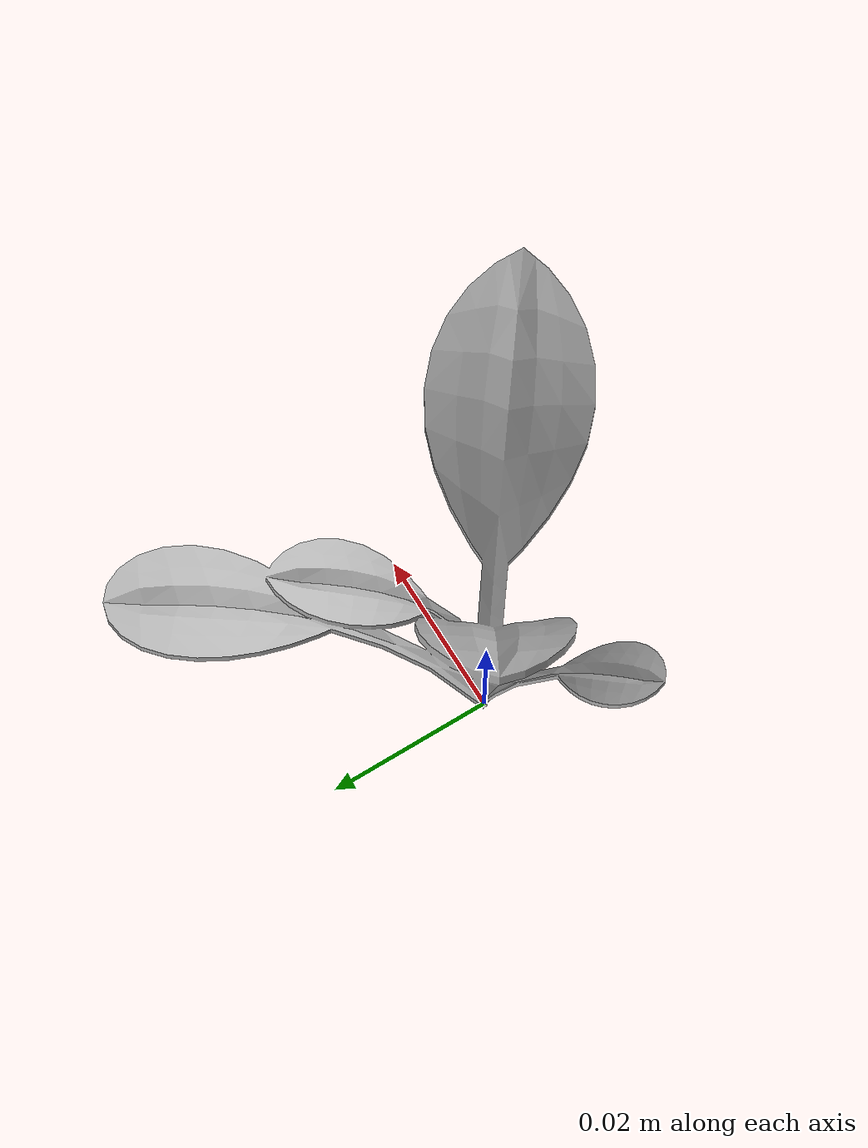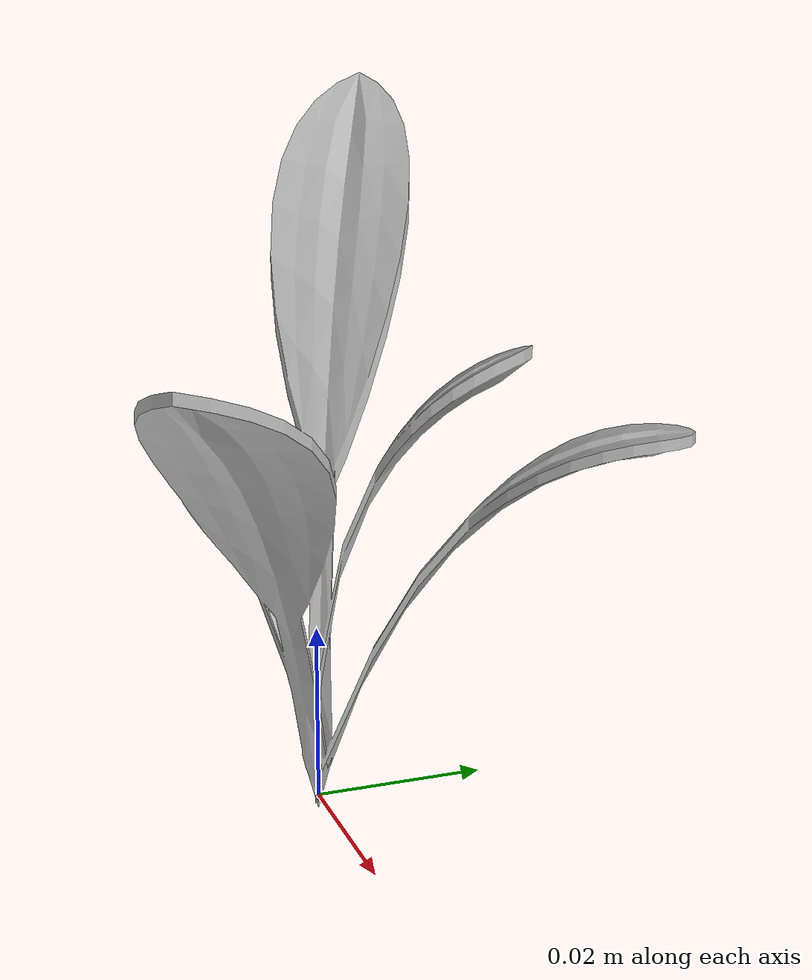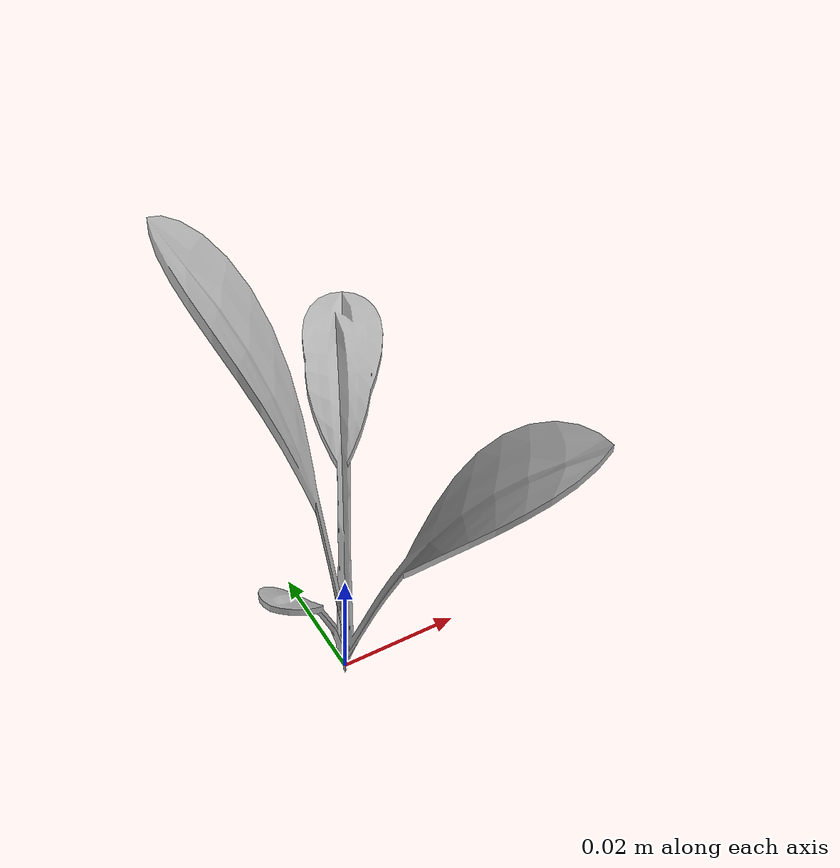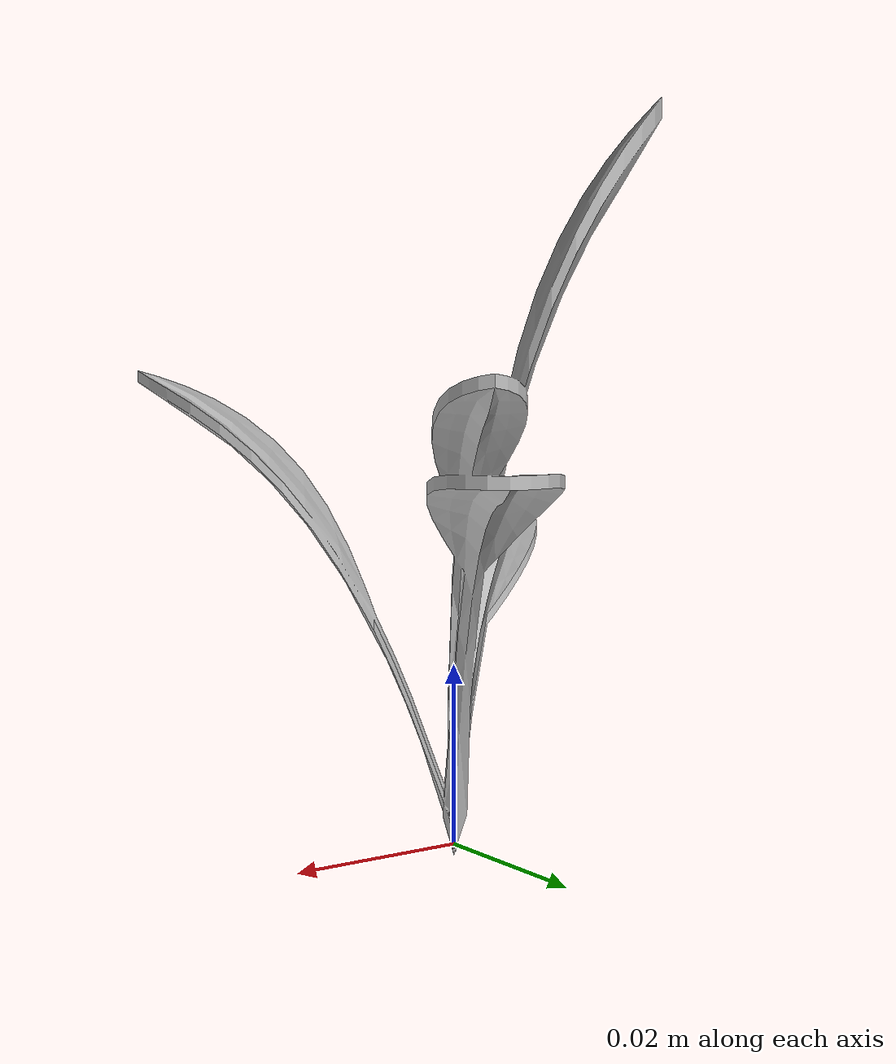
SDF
<sdf version="1.6">
  <model name="sugar_beet_50">
    <static>true</static>
    <link name="body">
      <visual name="visual">
        <geometry>
          <mesh>
            <uri>file:///sugar_beet_50/media/sugar_beet.dae</uri>
          </mesh>
        </geometry>
      </visual>
    </link>
  </model>
</sdf>
